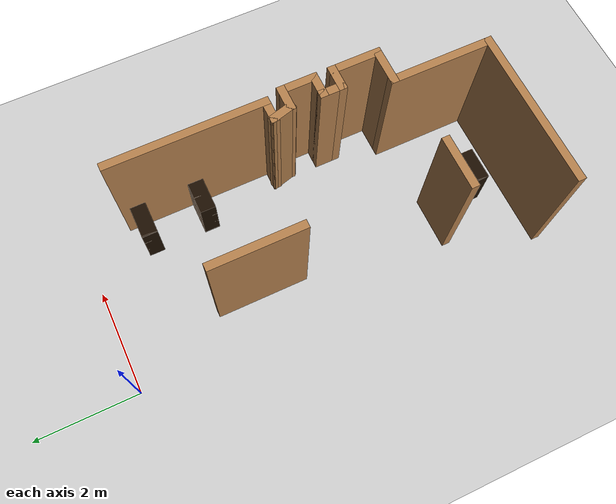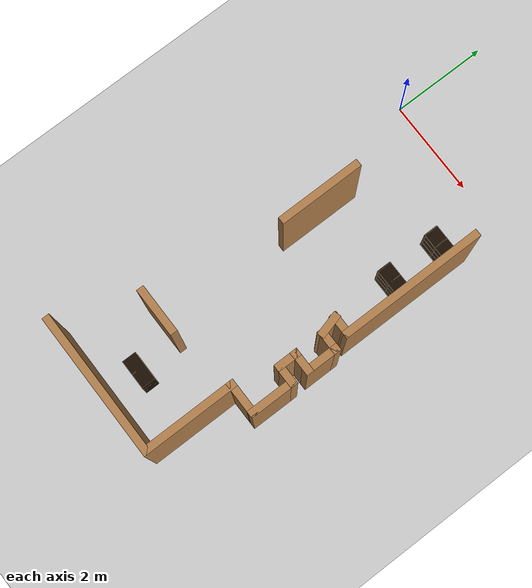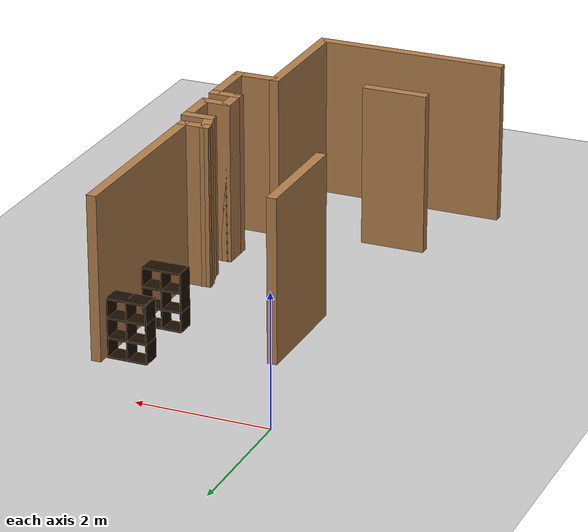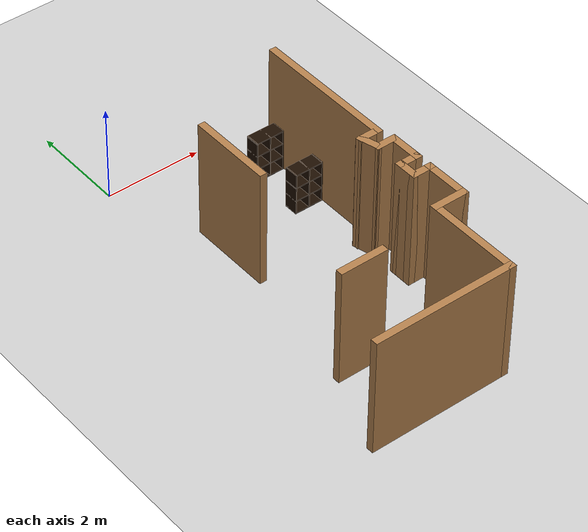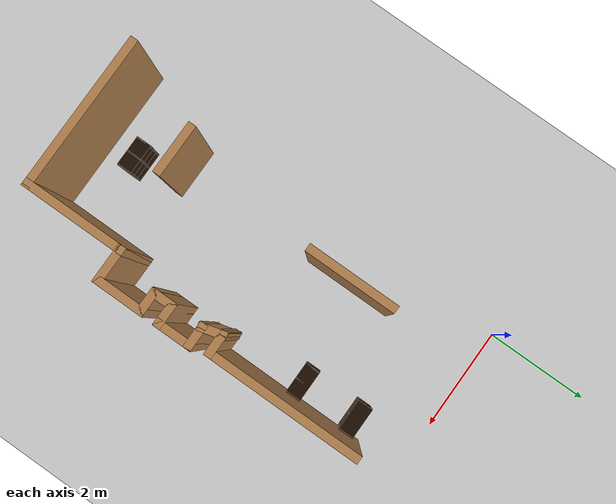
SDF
<sdf version="1.6">
 <world name="default">
  <model name="ground_plane">
   <static>1</static>
   <link name="link">
    <collision name="collision">
     <geometry><plane><normal>0 0 1</normal><size>100 100</size></plane></geometry>
     <surface><friction><ode><mu>100</mu><mu2>50</mu2></ode></friction></surface>
    </collision>
    <visual name="visual">
     <cast_shadows>0</cast_shadows>
     <geometry><plane><normal>0 0 1</normal><size>100 100</size></plane></geometry>
     <material>
      <script><uri>file://media/materials/scripts/gazebo.material</uri><name>Gazebo/Grey</name></script>
     </material>
    </visual>
   </link>
  </model>
  <model name="map_42">
   <link name="Wall_111">
    <pose>1.22826 -1.58492 0 0 0 -1.5708</pose>
    <visual name="Wall_111_Visual">
     <pose>0 0 1.25 0 -0 0</pose>
     <geometry><box><size>1.75 0.15 2.5</size></box></geometry>
     <material>
      <script><uri>file://media/materials/scripts/gazebo.material</uri><name>Gazebo/Wood</name></script>
      <ambient>1 1 1 1</ambient>
      <shader type="pixel"/>
     </material>
     <meta><layer>0</layer></meta>
    </visual>
    <collision name="Wall_111_Collision">
     <pose>0 0 1.25 0 -0 0</pose>
     <geometry><box><size>1.75 0.15 2.5</size></box></geometry>
     <surface>
      <friction>
       <ode><mu>1</mu><mu2>1</mu2><fdir1>0 0 0</fdir1><slip1>0</slip1><slip2>0</slip2></ode>
       <torsional>
        <coefficient>1</coefficient>
        <patch_radius>0</patch_radius>
        <surface_radius>0</surface_radius>
        <use_patch_radius>1</use_patch_radius>
        <ode><slip>0</slip></ode>
       </torsional>
      </friction>
      <bounce><restitution_coefficient>0</restitution_coefficient><threshold>1e+06</threshold></bounce>
      <contact>
       <collide_without_contact>0</collide_without_contact>
       <collide_without_contact_bitmask>1</collide_without_contact_bitmask>
       <collide_bitmask>1</collide_bitmask>
       <ode>
        <soft_cfm>0</soft_cfm>
        <soft_erp>0.2</soft_erp>
        <kp>1e+13</kp>
        <kd>1</kd>
        <max_vel>0.01</max_vel>
        <min_depth>0</min_depth>
       </ode>
       <bullet>
        <split_impulse>1</split_impulse>
        <split_impulse_penetration_threshold>-0.01</split_impulse_penetration_threshold>
        <soft_cfm>0</soft_cfm>
        <soft_erp>0.2</soft_erp>
        <kp>1e+13</kp>
        <kd>1</kd>
       </bullet>
      </contact>
     </surface>
    </collision>
   </link>
   <link name="Wall_59">
    <pose>1.175 -5.14031 0 0 -0 0</pose>
    <visual name="Wall_59_Visual">
     <pose>0 0 1.25 0 -0 0</pose>
     <geometry><box><size>1 0.15 2.5</size></box></geometry>
     <material>
      <script><uri>file://media/materials/scripts/gazebo.material</uri><name>Gazebo/Wood</name></script>
      <ambient>1 1 1 1</ambient>
      <shader type="pixel"/>
     </material>
     <meta><layer>0</layer></meta>
    </visual>
    <collision name="Wall_59_Collision">
     <pose>0 0 1.25 0 -0 0</pose>
     <geometry><box><size>1 0.15 2.5</size></box></geometry>
     <surface>
      <friction>
       <ode><mu>1</mu><mu2>1</mu2><fdir1>0 0 0</fdir1><slip1>0</slip1><slip2>0</slip2></ode>
       <torsional>
        <coefficient>1</coefficient>
        <patch_radius>0</patch_radius>
        <surface_radius>0</surface_radius>
        <use_patch_radius>1</use_patch_radius>
        <ode><slip>0</slip></ode>
       </torsional>
      </friction>
      <bounce><restitution_coefficient>0</restitution_coefficient><threshold>1e+06</threshold></bounce>
      <contact>
       <collide_without_contact>0</collide_without_contact>
       <collide_without_contact_bitmask>1</collide_without_contact_bitmask>
       <collide_bitmask>1</collide_bitmask>
       <ode>
        <soft_cfm>0</soft_cfm>
        <soft_erp>0.2</soft_erp>
        <kp>1e+13</kp>
        <kd>1</kd>
        <max_vel>0.01</max_vel>
        <min_depth>0</min_depth>
       </ode>
       <bullet>
        <split_impulse>1</split_impulse>
        <split_impulse_penetration_threshold>-0.01</split_impulse_penetration_threshold>
        <soft_cfm>0</soft_cfm>
        <soft_erp>0.2</soft_erp>
        <kp>1e+13</kp>
        <kd>1</kd>
       </bullet>
      </contact>
     </surface>
    </collision>
   </link>
   <link name="Wall_65">
    <pose>1.575 -6.74031 0 0 -0 0</pose>
    <visual name="Wall_65_Visual">
     <pose>0 0 1.25 0 -0 0</pose>
     <geometry><box><size>3 0.15 2.5</size></box></geometry>
     <material>
      <script><uri>file://media/materials/scripts/gazebo.material</uri><name>Gazebo/Wood</name></script>
      <ambient>1 1 1 1</ambient>
      <shader type="pixel"/>
     </material>
     <meta><layer>0</layer></meta>
    </visual>
    <collision name="Wall_65_Collision">
     <pose>0 0 1.25 0 -0 0</pose>
     <geometry><box><size>3 0.15 2.5</size></box></geometry>
     <surface>
      <friction>
       <ode><mu>1</mu><mu2>1</mu2><fdir1>0 0 0</fdir1><slip1>0</slip1><slip2>0</slip2></ode>
       <torsional>
        <coefficient>1</coefficient>
        <patch_radius>0</patch_radius>
        <surface_radius>0</surface_radius>
        <use_patch_radius>1</use_patch_radius>
        <ode><slip>0</slip></ode>
       </torsional>
      </friction>
      <bounce><restitution_coefficient>0</restitution_coefficient><threshold>1e+06</threshold></bounce>
      <contact>
       <collide_without_contact>0</collide_without_contact>
       <collide_without_contact_bitmask>1</collide_without_contact_bitmask>
       <collide_bitmask>1</collide_bitmask>
       <ode>
        <soft_cfm>0</soft_cfm>
        <soft_erp>0.2</soft_erp>
        <kp>1e+13</kp>
        <kd>1</kd>
        <max_vel>0.01</max_vel>
        <min_depth>0</min_depth>
       </ode>
       <bullet>
        <split_impulse>1</split_impulse>
        <split_impulse_penetration_threshold>-0.01</split_impulse_penetration_threshold>
        <soft_cfm>0</soft_cfm>
        <soft_erp>0.2</soft_erp>
        <kp>1e+13</kp>
        <kd>1</kd>
       </bullet>
      </contact>
     </surface>
    </collision>
   </link>
   <link name="Wall_66">
    <pose>3 -5.81531 0 0 -0 1.5708</pose>
    <visual name="Wall_66_Visual">
     <pose>0 0 1.25 0 -0 0</pose>
     <geometry><box><size>2 0.15 2.5</size></box></geometry>
     <material>
      <script><uri>file://media/materials/scripts/gazebo.material</uri><name>Gazebo/Wood</name></script>
      <ambient>1 1 1 1</ambient>
      <shader type="pixel"/>
     </material>
     <meta><layer>0</layer></meta>
    </visual>
    <collision name="Wall_66_Collision">
     <pose>0 0 1.25 0 -0 0</pose>
     <geometry><box><size>2 0.15 2.5</size></box></geometry>
     <surface>
      <friction>
       <ode><mu>1</mu><mu2>1</mu2><fdir1>0 0 0</fdir1><slip1>0</slip1><slip2>0</slip2></ode>
       <torsional>
        <coefficient>1</coefficient>
        <patch_radius>0</patch_radius>
        <surface_radius>0</surface_radius>
        <use_patch_radius>1</use_patch_radius>
        <ode><slip>0</slip></ode>
       </torsional>
      </friction>
      <bounce><restitution_coefficient>0</restitution_coefficient><threshold>1e+06</threshold></bounce>
      <contact>
       <collide_without_contact>0</collide_without_contact>
       <collide_without_contact_bitmask>1</collide_without_contact_bitmask>
       <collide_bitmask>1</collide_bitmask>
       <ode>
        <soft_cfm>0</soft_cfm>
        <soft_erp>0.2</soft_erp>
        <kp>1e+13</kp>
        <kd>1</kd>
        <max_vel>0.01</max_vel>
        <min_depth>0</min_depth>
       </ode>
       <bullet>
        <split_impulse>1</split_impulse>
        <split_impulse_penetration_threshold>-0.01</split_impulse_penetration_threshold>
        <soft_cfm>0</soft_cfm>
        <soft_erp>0.2</soft_erp>
        <kp>1e+13</kp>
        <kd>1</kd>
       </bullet>
      </contact>
     </surface>
    </collision>
   </link>
   <link name="Wall_69">
    <pose>3.3 -4.89031 0 0 -0 0</pose>
    <visual name="Wall_69_Visual">
     <pose>0 0 1.25 0 -0 0</pose>
     <geometry><box><size>0.75 0.15 2.5</size></box></geometry>
     <material>
      <script><uri>file://media/materials/scripts/gazebo.material</uri><name>Gazebo/Wood</name></script>
      <ambient>1 1 1 1</ambient>
      <shader type="pixel"/>
     </material>
     <meta><layer>0</layer></meta>
    </visual>
    <collision name="Wall_69_Collision">
     <pose>0 0 1.25 0 -0 0</pose>
     <geometry><box><size>0.75 0.15 2.5</size></box></geometry>
     <surface>
      <friction>
       <ode><mu>1</mu><mu2>1</mu2><fdir1>0 0 0</fdir1><slip1>0</slip1><slip2>0</slip2></ode>
       <torsional>
        <coefficient>1</coefficient>
        <patch_radius>0</patch_radius>
        <surface_radius>0</surface_radius>
        <use_patch_radius>1</use_patch_radius>
        <ode><slip>0</slip></ode>
       </torsional>
      </friction>
      <bounce><restitution_coefficient>0</restitution_coefficient><threshold>1e+06</threshold></bounce>
      <contact>
       <collide_without_contact>0</collide_without_contact>
       <collide_without_contact_bitmask>1</collide_without_contact_bitmask>
       <collide_bitmask>1</collide_bitmask>
       <ode>
        <soft_cfm>0</soft_cfm>
        <soft_erp>0.2</soft_erp>
        <kp>1e+13</kp>
        <kd>1</kd>
        <max_vel>0.01</max_vel>
        <min_depth>0</min_depth>
       </ode>
       <bullet>
        <split_impulse>1</split_impulse>
        <split_impulse_penetration_threshold>-0.01</split_impulse_penetration_threshold>
        <soft_cfm>0</soft_cfm>
        <soft_erp>0.2</soft_erp>
        <kp>1e+13</kp>
        <kd>1</kd>
       </bullet>
      </contact>
     </surface>
    </collision>
   </link>
   <link name="Wall_70">
    <pose>3.6 -4.46531 0 0 -0 1.5708</pose>
    <visual name="Wall_70_Visual">
     <pose>0 0 1.25 0 -0 0</pose>
     <geometry><box><size>1 0.15 2.5</size></box></geometry>
     <material>
      <script><uri>file://media/materials/scripts/gazebo.material</uri><name>Gazebo/Wood</name></script>
      <ambient>1 1 1 1</ambient>
      <shader type="pixel"/>
     </material>
     <meta><layer>0</layer></meta>
    </visual>
    <collision name="Wall_70_Collision">
     <pose>0 0 1.25 0 -0 0</pose>
     <geometry><box><size>1 0.15 2.5</size></box></geometry>
     <surface>
      <friction>
       <ode><mu>1</mu><mu2>1</mu2><fdir1>0 0 0</fdir1><slip1>0</slip1><slip2>0</slip2></ode>
       <torsional>
        <coefficient>1</coefficient>
        <patch_radius>0</patch_radius>
        <surface_radius>0</surface_radius>
        <use_patch_radius>1</use_patch_radius>
        <ode><slip>0</slip></ode>
       </torsional>
      </friction>
      <bounce><restitution_coefficient>0</restitution_coefficient><threshold>1e+06</threshold></bounce>
      <contact>
       <collide_without_contact>0</collide_without_contact>
       <collide_without_contact_bitmask>1</collide_without_contact_bitmask>
       <collide_bitmask>1</collide_bitmask>
       <ode>
        <soft_cfm>0</soft_cfm>
        <soft_erp>0.2</soft_erp>
        <kp>1e+13</kp>
        <kd>1</kd>
        <max_vel>0.01</max_vel>
        <min_depth>0</min_depth>
       </ode>
       <bullet>
        <split_impulse>1</split_impulse>
        <split_impulse_penetration_threshold>-0.01</split_impulse_penetration_threshold>
        <soft_cfm>0</soft_cfm>
        <soft_erp>0.2</soft_erp>
        <kp>1e+13</kp>
        <kd>1</kd>
       </bullet>
      </contact>
     </surface>
    </collision>
   </link>
   <link name="Wall_71">
    <pose>3.425 -4.04031 0 0 -0 3.14159</pose>
    <visual name="Wall_71_Visual">
     <pose>0 0 1.25 0 -0 0</pose>
     <geometry><box><size>0.5 0.15 2.5</size></box></geometry>
     <material>
      <script><uri>file://media/materials/scripts/gazebo.material</uri><name>Gazebo/Wood</name></script>
      <ambient>1 1 1 1</ambient>
      <shader type="pixel"/>
     </material>
     <meta><layer>0</layer></meta>
    </visual>
    <collision name="Wall_71_Collision">
     <pose>0 0 1.25 0 -0 0</pose>
     <geometry><box><size>0.5 0.15 2.5</size></box></geometry>
     <surface>
      <friction>
       <ode><mu>1</mu><mu2>1</mu2><fdir1>0 0 0</fdir1><slip1>0</slip1><slip2>0</slip2></ode>
       <torsional>
        <coefficient>1</coefficient>
        <patch_radius>0</patch_radius>
        <surface_radius>0</surface_radius>
        <use_patch_radius>1</use_patch_radius>
        <ode><slip>0</slip></ode>
       </torsional>
      </friction>
      <bounce><restitution_coefficient>0</restitution_coefficient><threshold>1e+06</threshold></bounce>
      <contact>
       <collide_without_contact>0</collide_without_contact>
       <collide_without_contact_bitmask>1</collide_without_contact_bitmask>
       <collide_bitmask>1</collide_bitmask>
       <ode>
        <soft_cfm>0</soft_cfm>
        <soft_erp>0.2</soft_erp>
        <kp>1e+13</kp>
        <kd>1</kd>
        <max_vel>0.01</max_vel>
        <min_depth>0</min_depth>
       </ode>
       <bullet>
        <split_impulse>1</split_impulse>
        <split_impulse_penetration_threshold>-0.01</split_impulse_penetration_threshold>
        <soft_cfm>0</soft_cfm>
        <soft_erp>0.2</soft_erp>
        <kp>1e+13</kp>
        <kd>1</kd>
       </bullet>
      </contact>
     </surface>
    </collision>
   </link>
   <link name="Wall_72">
    <pose>3.25 -3.86531 0 0 -0 1.5708</pose>
    <visual name="Wall_72_Visual">
     <pose>0 0 1.25 0 -0 0</pose>
     <geometry><box><size>0.5 0.15 2.5</size></box></geometry>
     <material>
      <script><uri>file://media/materials/scripts/gazebo.material</uri><name>Gazebo/Wood</name></script>
      <ambient>1 1 1 1</ambient>
      <shader type="pixel"/>
     </material>
     <meta><layer>0</layer></meta>
    </visual>
    <collision name="Wall_72_Collision">
     <pose>0 0 1.25 0 -0 0</pose>
     <geometry><box><size>0.5 0.15 2.5</size></box></geometry>
     <surface>
      <friction>
       <ode><mu>1</mu><mu2>1</mu2><fdir1>0 0 0</fdir1><slip1>0</slip1><slip2>0</slip2></ode>
       <torsional>
        <coefficient>1</coefficient>
        <patch_radius>0</patch_radius>
        <surface_radius>0</surface_radius>
        <use_patch_radius>1</use_patch_radius>
        <ode><slip>0</slip></ode>
       </torsional>
      </friction>
      <bounce><restitution_coefficient>0</restitution_coefficient><threshold>1e+06</threshold></bounce>
      <contact>
       <collide_without_contact>0</collide_without_contact>
       <collide_without_contact_bitmask>1</collide_without_contact_bitmask>
       <collide_bitmask>1</collide_bitmask>
       <ode>
        <soft_cfm>0</soft_cfm>
        <soft_erp>0.2</soft_erp>
        <kp>1e+13</kp>
        <kd>1</kd>
        <max_vel>0.01</max_vel>
        <min_depth>0</min_depth>
       </ode>
       <bullet>
        <split_impulse>1</split_impulse>
        <split_impulse_penetration_threshold>-0.01</split_impulse_penetration_threshold>
        <soft_cfm>0</soft_cfm>
        <soft_erp>0.2</soft_erp>
        <kp>1e+13</kp>
        <kd>1</kd>
       </bullet>
      </contact>
     </surface>
    </collision>
   </link>
   <link name="Wall_73">
    <pose>3.425 -3.69031 0 0 -0 0</pose>
    <visual name="Wall_73_Visual">
     <pose>0 0 1.25 0 -0 0</pose>
     <geometry><box><size>0.5 0.15 2.5</size></box></geometry>
     <material>
      <script><uri>file://media/materials/scripts/gazebo.material</uri><name>Gazebo/Wood</name></script>
      <ambient>1 1 1 1</ambient>
      <shader type="pixel"/>
     </material>
     <meta><layer>0</layer></meta>
    </visual>
    <collision name="Wall_73_Collision">
     <pose>0 0 1.25 0 -0 0</pose>
     <geometry><box><size>0.5 0.15 2.5</size></box></geometry>
     <surface>
      <friction>
       <ode><mu>1</mu><mu2>1</mu2><fdir1>0 0 0</fdir1><slip1>0</slip1><slip2>0</slip2></ode>
       <torsional>
        <coefficient>1</coefficient>
        <patch_radius>0</patch_radius>
        <surface_radius>0</surface_radius>
        <use_patch_radius>1</use_patch_radius>
        <ode><slip>0</slip></ode>
       </torsional>
      </friction>
      <bounce><restitution_coefficient>0</restitution_coefficient><threshold>1e+06</threshold></bounce>
      <contact>
       <collide_without_contact>0</collide_without_contact>
       <collide_without_contact_bitmask>1</collide_without_contact_bitmask>
       <collide_bitmask>1</collide_bitmask>
       <ode>
        <soft_cfm>0</soft_cfm>
        <soft_erp>0.2</soft_erp>
        <kp>1e+13</kp>
        <kd>1</kd>
        <max_vel>0.01</max_vel>
        <min_depth>0</min_depth>
       </ode>
       <bullet>
        <split_impulse>1</split_impulse>
        <split_impulse_penetration_threshold>-0.01</split_impulse_penetration_threshold>
        <soft_cfm>0</soft_cfm>
        <soft_erp>0.2</soft_erp>
        <kp>1e+13</kp>
        <kd>1</kd>
       </bullet>
      </contact>
     </surface>
    </collision>
   </link>
   <link name="Wall_74">
    <pose>3.6 -3.39031 0 0 -0 1.5708</pose>
    <visual name="Wall_74_Visual">
     <pose>0 0 1.25 0 -0 0</pose>
     <geometry><box><size>0.75 0.15 2.5</size></box></geometry>
     <material>
      <script><uri>file://media/materials/scripts/gazebo.material</uri><name>Gazebo/Wood</name></script>
      <ambient>1 1 1 1</ambient>
      <shader type="pixel"/>
     </material>
     <meta><layer>0</layer></meta>
    </visual>
    <collision name="Wall_74_Collision">
     <pose>0 0 1.25 0 -0 0</pose>
     <geometry><box><size>0.75 0.15 2.5</size></box></geometry>
     <surface>
      <friction>
       <ode><mu>1</mu><mu2>1</mu2><fdir1>0 0 0</fdir1><slip1>0</slip1><slip2>0</slip2></ode>
       <torsional>
        <coefficient>1</coefficient>
        <patch_radius>0</patch_radius>
        <surface_radius>0</surface_radius>
        <use_patch_radius>1</use_patch_radius>
        <ode><slip>0</slip></ode>
       </torsional>
      </friction>
      <bounce><restitution_coefficient>0</restitution_coefficient><threshold>1e+06</threshold></bounce>
      <contact>
       <collide_without_contact>0</collide_without_contact>
       <collide_without_contact_bitmask>1</collide_without_contact_bitmask>
       <collide_bitmask>1</collide_bitmask>
       <ode>
        <soft_cfm>0</soft_cfm>
        <soft_erp>0.2</soft_erp>
        <kp>1e+13</kp>
        <kd>1</kd>
        <max_vel>0.01</max_vel>
        <min_depth>0</min_depth>
       </ode>
       <bullet>
        <split_impulse>1</split_impulse>
        <split_impulse_penetration_threshold>-0.01</split_impulse_penetration_threshold>
        <soft_cfm>0</soft_cfm>
        <soft_erp>0.2</soft_erp>
        <kp>1e+13</kp>
        <kd>1</kd>
       </bullet>
      </contact>
     </surface>
    </collision>
   </link>
   <link name="Wall_75">
    <pose>3.425 -3.09031 0 0 -0 3.14159</pose>
    <visual name="Wall_75_Visual">
     <pose>0 0 1.25 0 -0 0</pose>
     <geometry><box><size>0.5 0.15 2.5</size></box></geometry>
     <material>
      <script><uri>file://media/materials/scripts/gazebo.material</uri><name>Gazebo/Wood</name></script>
      <ambient>1 1 1 1</ambient>
      <shader type="pixel"/>
     </material>
     <meta><layer>0</layer></meta>
    </visual>
    <collision name="Wall_75_Collision">
     <pose>0 0 1.25 0 -0 0</pose>
     <geometry><box><size>0.5 0.15 2.5</size></box></geometry>
     <surface>
      <friction>
       <ode><mu>1</mu><mu2>1</mu2><fdir1>0 0 0</fdir1><slip1>0</slip1><slip2>0</slip2></ode>
       <torsional>
        <coefficient>1</coefficient>
        <patch_radius>0</patch_radius>
        <surface_radius>0</surface_radius>
        <use_patch_radius>1</use_patch_radius>
        <ode><slip>0</slip></ode>
       </torsional>
      </friction>
      <bounce><restitution_coefficient>0</restitution_coefficient><threshold>1e+06</threshold></bounce>
      <contact>
       <collide_without_contact>0</collide_without_contact>
       <collide_without_contact_bitmask>1</collide_without_contact_bitmask>
       <collide_bitmask>1</collide_bitmask>
       <ode>
        <soft_cfm>0</soft_cfm>
        <soft_erp>0.2</soft_erp>
        <kp>1e+13</kp>
        <kd>1</kd>
        <max_vel>0.01</max_vel>
        <min_depth>0</min_depth>
       </ode>
       <bullet>
        <split_impulse>1</split_impulse>
        <split_impulse_penetration_threshold>-0.01</split_impulse_penetration_threshold>
        <soft_cfm>0</soft_cfm>
        <soft_erp>0.2</soft_erp>
        <kp>1e+13</kp>
        <kd>1</kd>
       </bullet>
      </contact>
     </surface>
    </collision>
   </link>
   <link name="Wall_76">
    <pose>3.20471 -2.92128 0 0 -0 1.8326</pose>
    <visual name="Wall_76_Visual">
     <pose>0 0 1.25 0 -0 0</pose>
     <geometry><box><size>0.5 0.15 2.5</size></box></geometry>
     <material>
      <script><uri>file://media/materials/scripts/gazebo.material</uri><name>Gazebo/Wood</name></script>
      <ambient>1 1 1 1</ambient>
      <shader type="pixel"/>
     </material>
     <meta><layer>0</layer></meta>
    </visual>
    <collision name="Wall_76_Collision">
     <pose>0 0 1.25 0 -0 0</pose>
     <geometry><box><size>0.5 0.15 2.5</size></box></geometry>
     <surface>
      <friction>
       <ode><mu>1</mu><mu2>1</mu2><fdir1>0 0 0</fdir1><slip1>0</slip1><slip2>0</slip2></ode>
       <torsional>
        <coefficient>1</coefficient>
        <patch_radius>0</patch_radius>
        <surface_radius>0</surface_radius>
        <use_patch_radius>1</use_patch_radius>
        <ode><slip>0</slip></ode>
       </torsional>
      </friction>
      <bounce><restitution_coefficient>0</restitution_coefficient><threshold>1e+06</threshold></bounce>
      <contact>
       <collide_without_contact>0</collide_without_contact>
       <collide_without_contact_bitmask>1</collide_without_contact_bitmask>
       <collide_bitmask>1</collide_bitmask>
       <ode>
        <soft_cfm>0</soft_cfm>
        <soft_erp>0.2</soft_erp>
        <kp>1e+13</kp>
        <kd>1</kd>
        <max_vel>0.01</max_vel>
        <min_depth>0</min_depth>
       </ode>
       <bullet>
        <split_impulse>1</split_impulse>
        <split_impulse_penetration_threshold>-0.01</split_impulse_penetration_threshold>
        <soft_cfm>0</soft_cfm>
        <soft_erp>0.2</soft_erp>
        <kp>1e+13</kp>
        <kd>1</kd>
       </bullet>
      </contact>
     </surface>
    </collision>
   </link>
   <link name="Wall_77">
    <pose>3.33441 -2.75224 0 0 -0 0</pose>
    <visual name="Wall_77_Visual">
     <pose>0 0 1.25 0 -0 0</pose>
     <geometry><box><size>0.5 0.15 2.5</size></box></geometry>
     <material>
      <script><uri>file://media/materials/scripts/gazebo.material</uri><name>Gazebo/Wood</name></script>
      <ambient>1 1 1 1</ambient>
      <shader type="pixel"/>
     </material>
     <meta><layer>0</layer></meta>
    </visual>
    <collision name="Wall_77_Collision">
     <pose>0 0 1.25 0 -0 0</pose>
     <geometry><box><size>0.5 0.15 2.5</size></box></geometry>
     <surface>
      <friction>
       <ode><mu>1</mu><mu2>1</mu2><fdir1>0 0 0</fdir1><slip1>0</slip1><slip2>0</slip2></ode>
       <torsional>
        <coefficient>1</coefficient>
        <patch_radius>0</patch_radius>
        <surface_radius>0</surface_radius>
        <use_patch_radius>1</use_patch_radius>
        <ode><slip>0</slip></ode>
       </torsional>
      </friction>
      <bounce><restitution_coefficient>0</restitution_coefficient><threshold>1e+06</threshold></bounce>
      <contact>
       <collide_without_contact>0</collide_without_contact>
       <collide_without_contact_bitmask>1</collide_without_contact_bitmask>
       <collide_bitmask>1</collide_bitmask>
       <ode>
        <soft_cfm>0</soft_cfm>
        <soft_erp>0.2</soft_erp>
        <kp>1e+13</kp>
        <kd>1</kd>
        <max_vel>0.01</max_vel>
        <min_depth>0</min_depth>
       </ode>
       <bullet>
        <split_impulse>1</split_impulse>
        <split_impulse_penetration_threshold>-0.01</split_impulse_penetration_threshold>
        <soft_cfm>0</soft_cfm>
        <soft_erp>0.2</soft_erp>
        <kp>1e+13</kp>
        <kd>1</kd>
       </bullet>
      </contact>
     </surface>
    </collision>
   </link>
   <link name="Wall_78">
    <pose>3.50941 -1.32724 0 0 -0 1.5708</pose>
    <visual name="Wall_78_Visual">
     <pose>0 0 1.25 0 -0 0</pose>
     <geometry><box><size>3 0.15 2.5</size></box></geometry>
     <material>
      <script><uri>file://media/materials/scripts/gazebo.material</uri><name>Gazebo/Wood</name></script>
      <ambient>1 1 1 1</ambient>
      <shader type="pixel"/>
     </material>
     <meta><layer>0</layer></meta>
    </visual>
    <collision name="Wall_78_Collision">
     <pose>0 0 1.25 0 -0 0</pose>
     <geometry><box><size>3 0.15 2.5</size></box></geometry>
     <surface>
      <friction>
       <ode><mu>1</mu><mu2>1</mu2><fdir1>0 0 0</fdir1><slip1>0</slip1><slip2>0</slip2></ode>
       <torsional>
        <coefficient>1</coefficient>
        <patch_radius>0</patch_radius>
        <surface_radius>0</surface_radius>
        <use_patch_radius>1</use_patch_radius>
        <ode><slip>0</slip></ode>
       </torsional>
      </friction>
      <bounce><restitution_coefficient>0</restitution_coefficient><threshold>1e+06</threshold></bounce>
      <contact>
       <collide_without_contact>0</collide_without_contact>
       <collide_without_contact_bitmask>1</collide_without_contact_bitmask>
       <collide_bitmask>1</collide_bitmask>
       <ode>
        <soft_cfm>0</soft_cfm>
        <soft_erp>0.2</soft_erp>
        <kp>1e+13</kp>
        <kd>1</kd>
        <max_vel>0.01</max_vel>
        <min_depth>0</min_depth>
       </ode>
       <bullet>
        <split_impulse>1</split_impulse>
        <split_impulse_penetration_threshold>-0.01</split_impulse_penetration_threshold>
        <soft_cfm>0</soft_cfm>
        <soft_erp>0.2</soft_erp>
        <kp>1e+13</kp>
        <kd>1</kd>
       </bullet>
      </contact>
     </surface>
    </collision>
   </link>
   <static>1</static>
   <pose>-0.44967 -1.08542 0 0 -0 0</pose>
  </model>
  <model name="6_Cube_StorageE">
   <link name="Wall_0">
    <pose>0 0 0.01 0 -0 0</pose>
    <inertial>
     <mass>1.6201</mass>
     <inertia><ixx>0.0119</ixx><iyy>0.0631</iyy><izz>0.0513</izz><ixy>0</ixy><ixz>0</ixz><iyz>0</iyz></inertia>
    </inertial>
    <collision name="Wall_0_Collision"><geometry><box><size>0.616 0.296 0.02</size></box></geometry></collision>
    <visual name="Wall_0_Visual">
     <geometry><box><size>0.616 0.296 0.02</size></box></geometry>
     <material>
      <script><uri>file://media/materials/scripts/gazebo.material</uri><name>Gazebo/Grey</name></script>
      <ambient>0.105882 0.0509804 0 1</ambient>
     </material>
    </visual>
   </link>
   <joint name="0_2" type="fixed">
    <pose>-0.308 0 0 0 -0 0</pose>
    <parent>Wall_2</parent>
    <child>Wall_0</child>
    <axis>
     <xyz>1 0 0</xyz>
     <use_parent_model_frame>0</use_parent_model_frame>
     <limit><lower>-1e+16</lower><upper>1e+16</upper></limit>
    </axis>
   </joint>
   <joint name="0_12" type="fixed">
    <parent>Wall_12</parent>
    <child>Wall_0</child>
    <axis>
     <xyz>0 0 1</xyz>
     <use_parent_model_frame>0</use_parent_model_frame>
     <limit><lower>-1e+16</lower><upper>1e+16</upper></limit>
    </axis>
   </joint>
   <joint name="0_4" type="fixed">
    <pose>0.308 0 0 0 -0 0</pose>
    <parent>Wall_4</parent>
    <child>Wall_0</child>
    <axis>
     <xyz>1 0 0</xyz>
     <use_parent_model_frame>0</use_parent_model_frame>
     <limit><lower>-1e+16</lower><upper>1e+16</upper></limit>
    </axis>
   </joint>
   <link name="Wall_10">
    <pose>0 0 0.61 0 -0 0</pose>
    <inertial>
     <mass>1.6201</mass>
     <inertia><ixx>0.0119</ixx><iyy>0.0631</iyy><izz>0.0513</izz><ixy>0</ixy><ixz>0</ixz><iyz>0</iyz></inertia>
    </inertial>
    <collision name="Wall_10_Collision"><geometry><box><size>0.616 0.296 0.02</size></box></geometry></collision>
    <visual name="Wall_10_Visual">
     <geometry><box><size>0.616 0.296 0.02</size></box></geometry>
     <material>
      <script><uri>file://media/materials/scripts/gazebo.material</uri><name>Gazebo/Grey</name></script>
      <ambient>0.105882 0.0509804 0 1</ambient>
     </material>
    </visual>
   </link>
   <joint name="10_2" type="fixed">
    <pose>-0.308 0 0 0 -0 0</pose>
    <parent>Wall_2</parent>
    <child>Wall_10</child>
    <axis>
     <xyz>1 0 0</xyz>
     <use_parent_model_frame>0</use_parent_model_frame>
     <limit><lower>-1e+16</lower><upper>1e+16</upper></limit>
    </axis>
   </joint>
   <joint name="10_12" type="fixed">
    <parent>Wall_12</parent>
    <child>Wall_10</child>
    <axis>
     <xyz>0 0 1</xyz>
     <use_parent_model_frame>0</use_parent_model_frame>
     <limit><lower>-1e+16</lower><upper>1e+16</upper></limit>
    </axis>
   </joint>
   <joint name="10_4" type="fixed">
    <pose>0.308 0 0 0 -0 0</pose>
    <parent>Wall_4</parent>
    <child>Wall_10</child>
    <axis>
     <xyz>1 0 0</xyz>
     <use_parent_model_frame>0</use_parent_model_frame>
     <limit><lower>-1e+16</lower><upper>1e+16</upper></limit>
    </axis>
   </joint>
   <link name="Wall_12">
    <pose>0 0 0.4575 0 -0 0</pose>
    <inertial>
     <mass>2.4065</mass>
     <inertia><ixx>0.0177</ixx><iyy>0.1855</iyy><izz>0.168</izz><ixy>0</ixy><ixz>0</ixz><iyz>0</iyz></inertia>
    </inertial>
    <collision name="Wall_12_Collision"><geometry><box><size>0.02 0.296 0.915</size></box></geometry></collision>
    <visual name="Wall_12_Visual">
     <geometry><box><size>0.02 0.296 0.915</size></box></geometry>
     <material>
      <script><uri>file://media/materials/scripts/gazebo.material</uri><name>Gazebo/Grey</name></script>
      <ambient>0.105882 0.0509804 0 1</ambient>
     </material>
    </visual>
   </link>
   <link name="Wall_2">
    <pose>-0.298 0 0.4575 0 -0 0</pose>
    <inertial>
     <mass>2.4065</mass>
     <inertia><ixx>0.0177</ixx><iyy>0.1855</iyy><izz>0.168</izz><ixy>0</ixy><ixz>0</ixz><iyz>0</iyz></inertia>
    </inertial>
    <collision name="Wall_2_Collision"><geometry><box><size>0.02 0.296 0.915</size></box></geometry></collision>
    <visual name="Wall_2_Visual">
     <geometry><box><size>0.02 0.296 0.915</size></box></geometry>
     <material>
      <script><uri>file://media/materials/scripts/gazebo.material</uri><name>Gazebo/Grey</name></script>
      <ambient>0.105882 0.0509804 0 1</ambient>
     </material>
    </visual>
   </link>
   <link name="Wall_4">
    <pose>0.298 0 0.4575 0 -0 0</pose>
    <inertial>
     <mass>2.4065</mass>
     <inertia><ixx>0.0177</ixx><iyy>0.1855</iyy><izz>0.168</izz><ixy>0</ixy><ixz>0</ixz><iyz>0</iyz></inertia>
    </inertial>
    <collision name="Wall_4_Collision"><geometry><box><size>0.02 0.296 0.915</size></box></geometry></collision>
    <visual name="Wall_4_Visual">
     <geometry><box><size>0.02 0.296 0.915</size></box></geometry>
     <material>
      <script><uri>file://media/materials/scripts/gazebo.material</uri><name>Gazebo/Grey</name></script>
      <ambient>0.105882 0.0509804 0 1</ambient>
     </material>
    </visual>
   </link>
   <link name="Wall_6">
    <pose>0 0 0.905 0 -0 0</pose>
    <inertial>
     <mass>1.6201</mass>
     <inertia><ixx>0.0119</ixx><iyy>0.0631</iyy><izz>0.0513</izz><ixy>0</ixy><ixz>0</ixz><iyz>0</iyz></inertia>
    </inertial>
    <collision name="Wall_6_Collision"><geometry><box><size>0.616 0.296 0.02</size></box></geometry></collision>
    <visual name="Wall_6_Visual">
     <geometry><box><size>0.616 0.296 0.02</size></box></geometry>
     <material>
      <script><uri>file://media/materials/scripts/gazebo.material</uri><name>Gazebo/Grey</name></script>
      <ambient>0.105882 0.0509804 0 1</ambient>
     </material>
    </visual>
   </link>
   <joint name="6_2" type="fixed">
    <pose>-0.308 0 0 0 -0 0</pose>
    <parent>Wall_2</parent>
    <child>Wall_6</child>
    <axis>
     <xyz>2 0 0</xyz>
     <use_parent_model_frame>0</use_parent_model_frame>
     <limit><lower>-1e+16</lower><upper>1e+16</upper></limit>
    </axis>
   </joint>
   <joint name="6_12" type="fixed">
    <parent>Wall_12</parent>
    <child>Wall_6</child>
    <axis>
     <xyz>0 0 1</xyz>
     <use_parent_model_frame>0</use_parent_model_frame>
     <limit><lower>-1e+16</lower><upper>1e+16</upper></limit>
    </axis>
   </joint>
   <joint name="6_4" type="fixed">
    <pose>0.308 0 0 0 -0 0</pose>
    <parent>Wall_4</parent>
    <child>Wall_6</child>
    <axis>
     <xyz>1 0 0</xyz>
     <use_parent_model_frame>0</use_parent_model_frame>
     <limit><lower>-1e+16</lower><upper>1e+16</upper></limit>
    </axis>
   </joint>
   <link name="Wall_8">
    <pose>0 0 0.305 0 -0 0</pose>
    <inertial>
     <mass>1.6201</mass>
     <inertia><ixx>0.0119</ixx><iyy>0.0631</iyy><izz>0.0513</izz><ixy>0</ixy><ixz>0</ixz><iyz>0</iyz></inertia>
    </inertial>
    <collision name="Wall_8_Collision"><geometry><box><size>0.616 0.296 0.02</size></box></geometry></collision>
    <visual name="Wall_8_Visual">
     <geometry><box><size>0.616 0.296 0.02</size></box></geometry>
     <material>
      <script><uri>file://media/materials/scripts/gazebo.material</uri><name>Gazebo/Grey</name></script>
      <ambient>0.105882 0.0509804 0 1</ambient>
     </material>
    </visual>
   </link>
   <joint name="8_2" type="fixed">
    <pose>-0.308 0 0 0 -0 0</pose>
    <parent>Wall_2</parent>
    <child>Wall_8</child>
    <axis>
     <xyz>1 0 0</xyz>
     <use_parent_model_frame>0</use_parent_model_frame>
     <limit><lower>-1e+16</lower><upper>1e+16</upper></limit>
    </axis>
   </joint>
   <joint name="8_12" type="fixed">
    <parent>Wall_12</parent>
    <child>Wall_8</child>
    <axis>
     <xyz>0 0 1</xyz>
     <use_parent_model_frame>0</use_parent_model_frame>
     <limit><lower>-1e+16</lower><upper>1e+16</upper></limit>
    </axis>
   </joint>
   <joint name="8_4" type="fixed">
    <pose>0.308 0 0 0 -0 0</pose>
    <parent>Wall_4</parent>
    <child>Wall_8</child>
    <axis>
     <xyz>1 0 0</xyz>
     <use_parent_model_frame>0</use_parent_model_frame>
     <limit><lower>-1e+16</lower><upper>1e+16</upper></limit>
    </axis>
   </joint>
   <static>1</static>
   <pose>2.66113 -1.22407 0 0 -0 0</pose>
  </model>
  <model name="6_Cube_StorageE_0">
   <link name="Wall_0">
    <pose>0 0 0.01 0 -0 0</pose>
    <inertial>
     <mass>1.6201</mass>
     <inertia><ixx>0.0119</ixx><iyy>0.0631</iyy><izz>0.0513</izz><ixy>0</ixy><ixz>0</ixz><iyz>0</iyz></inertia>
    </inertial>
    <collision name="Wall_0_Collision"><geometry><box><size>0.616 0.296 0.02</size></box></geometry></collision>
    <visual name="Wall_0_Visual">
     <geometry><box><size>0.616 0.296 0.02</size></box></geometry>
     <material>
      <script><uri>file://media/materials/scripts/gazebo.material</uri><name>Gazebo/Grey</name></script>
      <ambient>0.105882 0.0509804 0 1</ambient>
     </material>
    </visual>
   </link>
   <joint name="0_2" type="fixed">
    <pose>-0.308 0 0 0 -0 0</pose>
    <parent>Wall_2</parent>
    <child>Wall_0</child>
    <axis>
     <xyz>1 0 0</xyz>
     <use_parent_model_frame>0</use_parent_model_frame>
     <limit><lower>-1e+16</lower><upper>1e+16</upper></limit>
    </axis>
   </joint>
   <joint name="0_12" type="fixed">
    <parent>Wall_12</parent>
    <child>Wall_0</child>
    <axis>
     <xyz>0 0 1</xyz>
     <use_parent_model_frame>0</use_parent_model_frame>
     <limit><lower>-1e+16</lower><upper>1e+16</upper></limit>
    </axis>
   </joint>
   <joint name="0_4" type="fixed">
    <pose>0.308 0 0 0 -0 0</pose>
    <parent>Wall_4</parent>
    <child>Wall_0</child>
    <axis>
     <xyz>1 0 0</xyz>
     <use_parent_model_frame>0</use_parent_model_frame>
     <limit><lower>-1e+16</lower><upper>1e+16</upper></limit>
    </axis>
   </joint>
   <link name="Wall_10">
    <pose>0 0 0.61 0 -0 0</pose>
    <inertial>
     <mass>1.6201</mass>
     <inertia><ixx>0.0119</ixx><iyy>0.0631</iyy><izz>0.0513</izz><ixy>0</ixy><ixz>0</ixz><iyz>0</iyz></inertia>
    </inertial>
    <collision name="Wall_10_Collision"><geometry><box><size>0.616 0.296 0.02</size></box></geometry></collision>
    <visual name="Wall_10_Visual">
     <geometry><box><size>0.616 0.296 0.02</size></box></geometry>
     <material>
      <script><uri>file://media/materials/scripts/gazebo.material</uri><name>Gazebo/Grey</name></script>
      <ambient>0.105882 0.0509804 0 1</ambient>
     </material>
    </visual>
   </link>
   <joint name="10_2" type="fixed">
    <pose>-0.308 0 0 0 -0 0</pose>
    <parent>Wall_2</parent>
    <child>Wall_10</child>
    <axis>
     <xyz>1 0 0</xyz>
     <use_parent_model_frame>0</use_parent_model_frame>
     <limit><lower>-1e+16</lower><upper>1e+16</upper></limit>
    </axis>
   </joint>
   <joint name="10_12" type="fixed">
    <parent>Wall_12</parent>
    <child>Wall_10</child>
    <axis>
     <xyz>0 0 1</xyz>
     <use_parent_model_frame>0</use_parent_model_frame>
     <limit><lower>-1e+16</lower><upper>1e+16</upper></limit>
    </axis>
   </joint>
   <joint name="10_4" type="fixed">
    <pose>0.308 0 0 0 -0 0</pose>
    <parent>Wall_4</parent>
    <child>Wall_10</child>
    <axis>
     <xyz>1 0 0</xyz>
     <use_parent_model_frame>0</use_parent_model_frame>
     <limit><lower>-1e+16</lower><upper>1e+16</upper></limit>
    </axis>
   </joint>
   <link name="Wall_12">
    <pose>0 0 0.4575 0 -0 0</pose>
    <inertial>
     <mass>2.4065</mass>
     <inertia><ixx>0.0177</ixx><iyy>0.1855</iyy><izz>0.168</izz><ixy>0</ixy><ixz>0</ixz><iyz>0</iyz></inertia>
    </inertial>
    <collision name="Wall_12_Collision"><geometry><box><size>0.02 0.296 0.915</size></box></geometry></collision>
    <visual name="Wall_12_Visual">
     <geometry><box><size>0.02 0.296 0.915</size></box></geometry>
     <material>
      <script><uri>file://media/materials/scripts/gazebo.material</uri><name>Gazebo/Grey</name></script>
      <ambient>0.105882 0.0509804 0 1</ambient>
     </material>
    </visual>
   </link>
   <link name="Wall_2">
    <pose>-0.298 0 0.4575 0 -0 0</pose>
    <inertial>
     <mass>2.4065</mass>
     <inertia><ixx>0.0177</ixx><iyy>0.1855</iyy><izz>0.168</izz><ixy>0</ixy><ixz>0</ixz><iyz>0</iyz></inertia>
    </inertial>
    <collision name="Wall_2_Collision"><geometry><box><size>0.02 0.296 0.915</size></box></geometry></collision>
    <visual name="Wall_2_Visual">
     <geometry><box><size>0.02 0.296 0.915</size></box></geometry>
     <material>
      <script><uri>file://media/materials/scripts/gazebo.material</uri><name>Gazebo/Grey</name></script>
      <ambient>0.105882 0.0509804 0 1</ambient>
     </material>
    </visual>
   </link>
   <link name="Wall_4">
    <pose>0.298 0 0.4575 0 -0 0</pose>
    <inertial>
     <mass>2.4065</mass>
     <inertia><ixx>0.0177</ixx><iyy>0.1855</iyy><izz>0.168</izz><ixy>0</ixy><ixz>0</ixz><iyz>0</iyz></inertia>
    </inertial>
    <collision name="Wall_4_Collision"><geometry><box><size>0.02 0.296 0.915</size></box></geometry></collision>
    <visual name="Wall_4_Visual">
     <geometry><box><size>0.02 0.296 0.915</size></box></geometry>
     <material>
      <script><uri>file://media/materials/scripts/gazebo.material</uri><name>Gazebo/Grey</name></script>
      <ambient>0.105882 0.0509804 0 1</ambient>
     </material>
    </visual>
   </link>
   <link name="Wall_6">
    <pose>0 0 0.905 0 -0 0</pose>
    <inertial>
     <mass>1.6201</mass>
     <inertia><ixx>0.0119</ixx><iyy>0.0631</iyy><izz>0.0513</izz><ixy>0</ixy><ixz>0</ixz><iyz>0</iyz></inertia>
    </inertial>
    <collision name="Wall_6_Collision"><geometry><box><size>0.616 0.296 0.02</size></box></geometry></collision>
    <visual name="Wall_6_Visual">
     <geometry><box><size>0.616 0.296 0.02</size></box></geometry>
     <material>
      <script><uri>file://media/materials/scripts/gazebo.material</uri><name>Gazebo/Grey</name></script>
      <ambient>0.105882 0.0509804 0 1</ambient>
     </material>
    </visual>
   </link>
   <joint name="6_2" type="fixed">
    <pose>-0.308 0 0 0 -0 0</pose>
    <parent>Wall_2</parent>
    <child>Wall_6</child>
    <axis>
     <xyz>2 0 0</xyz>
     <use_parent_model_frame>0</use_parent_model_frame>
     <limit><lower>-1e+16</lower><upper>1e+16</upper></limit>
    </axis>
   </joint>
   <joint name="6_12" type="fixed">
    <parent>Wall_12</parent>
    <child>Wall_6</child>
    <axis>
     <xyz>0 0 1</xyz>
     <use_parent_model_frame>0</use_parent_model_frame>
     <limit><lower>-1e+16</lower><upper>1e+16</upper></limit>
    </axis>
   </joint>
   <joint name="6_4" type="fixed">
    <pose>0.308 0 0 0 -0 0</pose>
    <parent>Wall_4</parent>
    <child>Wall_6</child>
    <axis>
     <xyz>1 0 0</xyz>
     <use_parent_model_frame>0</use_parent_model_frame>
     <limit><lower>-1e+16</lower><upper>1e+16</upper></limit>
    </axis>
   </joint>
   <link name="Wall_8">
    <pose>0 0 0.305 0 -0 0</pose>
    <inertial>
     <mass>1.6201</mass>
     <inertia><ixx>0.0119</ixx><iyy>0.0631</iyy><izz>0.0513</izz><ixy>0</ixy><ixz>0</ixz><iyz>0</iyz></inertia>
    </inertial>
    <collision name="Wall_8_Collision"><geometry><box><size>0.616 0.296 0.02</size></box></geometry></collision>
    <visual name="Wall_8_Visual">
     <geometry><box><size>0.616 0.296 0.02</size></box></geometry>
     <material>
      <script><uri>file://media/materials/scripts/gazebo.material</uri><name>Gazebo/Grey</name></script>
      <ambient>0.105882 0.0509804 0 1</ambient>
     </material>
    </visual>
   </link>
   <joint name="8_2" type="fixed">
    <pose>-0.308 0 0 0 -0 0</pose>
    <parent>Wall_2</parent>
    <child>Wall_8</child>
    <axis>
     <xyz>1 0 0</xyz>
     <use_parent_model_frame>0</use_parent_model_frame>
     <limit><lower>-1e+16</lower><upper>1e+16</upper></limit>
    </axis>
   </joint>
   <joint name="8_12" type="fixed">
    <parent>Wall_12</parent>
    <child>Wall_8</child>
    <axis>
     <xyz>0 0 1</xyz>
     <use_parent_model_frame>0</use_parent_model_frame>
     <limit><lower>-1e+16</lower><upper>1e+16</upper></limit>
    </axis>
   </joint>
   <joint name="8_4" type="fixed">
    <pose>0.308 0 0 0 -0 0</pose>
    <parent>Wall_4</parent>
    <child>Wall_8</child>
    <axis>
     <xyz>1 0 0</xyz>
     <use_parent_model_frame>0</use_parent_model_frame>
     <limit><lower>-1e+16</lower><upper>1e+16</upper></limit>
    </axis>
   </joint>
   <static>1</static>
   <pose>2.66621 -2.34588 0 0 -0 0</pose>
  </model>
  <model name="6_Cube_StorageE_4">
   <link name="Wall_0">
    <pose>0 0 0.01 0 -0 0</pose>
    <inertial>
     <mass>1.6201</mass>
     <inertia><ixx>0.0119</ixx><iyy>0.0631</iyy><izz>0.0513</izz><ixy>0</ixy><ixz>0</ixz><iyz>0</iyz></inertia>
    </inertial>
    <collision name="Wall_0_Collision"><geometry><box><size>0.616 0.296 0.02</size></box></geometry></collision>
    <visual name="Wall_0_Visual">
     <geometry><box><size>0.616 0.296 0.02</size></box></geometry>
     <material>
      <script><uri>file://media/materials/scripts/gazebo.material</uri><name>Gazebo/Grey</name></script>
      <ambient>0.105882 0.0509804 0 1</ambient>
     </material>
    </visual>
   </link>
   <joint name="0_2" type="fixed">
    <pose>-0.308 0 0 0 -0 0</pose>
    <parent>Wall_2</parent>
    <child>Wall_0</child>
    <axis>
     <xyz>1 0 0</xyz>
     <use_parent_model_frame>0</use_parent_model_frame>
     <limit><lower>-1e+16</lower><upper>1e+16</upper></limit>
    </axis>
   </joint>
   <joint name="0_12" type="fixed">
    <parent>Wall_12</parent>
    <child>Wall_0</child>
    <axis>
     <xyz>0 0 1</xyz>
     <use_parent_model_frame>0</use_parent_model_frame>
     <limit><lower>-1e+16</lower><upper>1e+16</upper></limit>
    </axis>
   </joint>
   <joint name="0_4" type="fixed">
    <pose>0.308 0 0 0 -0 0</pose>
    <parent>Wall_4</parent>
    <child>Wall_0</child>
    <axis>
     <xyz>1 0 0</xyz>
     <use_parent_model_frame>0</use_parent_model_frame>
     <limit><lower>-1e+16</lower><upper>1e+16</upper></limit>
    </axis>
   </joint>
   <link name="Wall_10">
    <pose>0 0 0.61 0 -0 0</pose>
    <inertial>
     <mass>1.6201</mass>
     <inertia><ixx>0.0119</ixx><iyy>0.0631</iyy><izz>0.0513</izz><ixy>0</ixy><ixz>0</ixz><iyz>0</iyz></inertia>
    </inertial>
    <collision name="Wall_10_Collision"><geometry><box><size>0.616 0.296 0.02</size></box></geometry></collision>
    <visual name="Wall_10_Visual">
     <geometry><box><size>0.616 0.296 0.02</size></box></geometry>
     <material>
      <script><uri>file://media/materials/scripts/gazebo.material</uri><name>Gazebo/Grey</name></script>
      <ambient>0.105882 0.0509804 0 1</ambient>
     </material>
    </visual>
   </link>
   <joint name="10_2" type="fixed">
    <pose>-0.308 0 0 0 -0 0</pose>
    <parent>Wall_2</parent>
    <child>Wall_10</child>
    <axis>
     <xyz>1 0 0</xyz>
     <use_parent_model_frame>0</use_parent_model_frame>
     <limit><lower>-1e+16</lower><upper>1e+16</upper></limit>
    </axis>
   </joint>
   <joint name="10_12" type="fixed">
    <parent>Wall_12</parent>
    <child>Wall_10</child>
    <axis>
     <xyz>0 0 1</xyz>
     <use_parent_model_frame>0</use_parent_model_frame>
     <limit><lower>-1e+16</lower><upper>1e+16</upper></limit>
    </axis>
   </joint>
   <joint name="10_4" type="fixed">
    <pose>0.308 0 0 0 -0 0</pose>
    <parent>Wall_4</parent>
    <child>Wall_10</child>
    <axis>
     <xyz>1 0 0</xyz>
     <use_parent_model_frame>0</use_parent_model_frame>
     <limit><lower>-1e+16</lower><upper>1e+16</upper></limit>
    </axis>
   </joint>
   <link name="Wall_12">
    <pose>0 0 0.4575 0 -0 0</pose>
    <inertial>
     <mass>2.4065</mass>
     <inertia><ixx>0.0177</ixx><iyy>0.1855</iyy><izz>0.168</izz><ixy>0</ixy><ixz>0</ixz><iyz>0</iyz></inertia>
    </inertial>
    <collision name="Wall_12_Collision"><geometry><box><size>0.02 0.296 0.915</size></box></geometry></collision>
    <visual name="Wall_12_Visual">
     <geometry><box><size>0.02 0.296 0.915</size></box></geometry>
     <material>
      <script><uri>file://media/materials/scripts/gazebo.material</uri><name>Gazebo/Grey</name></script>
      <ambient>0.105882 0.0509804 0 1</ambient>
     </material>
    </visual>
   </link>
   <link name="Wall_2">
    <pose>-0.298 0 0.4575 0 -0 0</pose>
    <inertial>
     <mass>2.4065</mass>
     <inertia><ixx>0.0177</ixx><iyy>0.1855</iyy><izz>0.168</izz><ixy>0</ixy><ixz>0</ixz><iyz>0</iyz></inertia>
    </inertial>
    <collision name="Wall_2_Collision"><geometry><box><size>0.02 0.296 0.915</size></box></geometry></collision>
    <visual name="Wall_2_Visual">
     <geometry><box><size>0.02 0.296 0.915</size></box></geometry>
     <material>
      <script><uri>file://media/materials/scripts/gazebo.material</uri><name>Gazebo/Grey</name></script>
      <ambient>0.105882 0.0509804 0 1</ambient>
     </material>
    </visual>
   </link>
   <link name="Wall_4">
    <pose>0.298 0 0.4575 0 -0 0</pose>
    <inertial>
     <mass>2.4065</mass>
     <inertia><ixx>0.0177</ixx><iyy>0.1855</iyy><izz>0.168</izz><ixy>0</ixy><ixz>0</ixz><iyz>0</iyz></inertia>
    </inertial>
    <collision name="Wall_4_Collision"><geometry><box><size>0.02 0.296 0.915</size></box></geometry></collision>
    <visual name="Wall_4_Visual">
     <geometry><box><size>0.02 0.296 0.915</size></box></geometry>
     <material>
      <script><uri>file://media/materials/scripts/gazebo.material</uri><name>Gazebo/Grey</name></script>
      <ambient>0.105882 0.0509804 0 1</ambient>
     </material>
    </visual>
   </link>
   <link name="Wall_6">
    <pose>0 0 0.905 0 -0 0</pose>
    <inertial>
     <mass>1.6201</mass>
     <inertia><ixx>0.0119</ixx><iyy>0.0631</iyy><izz>0.0513</izz><ixy>0</ixy><ixz>0</ixz><iyz>0</iyz></inertia>
    </inertial>
    <collision name="Wall_6_Collision"><geometry><box><size>0.616 0.296 0.02</size></box></geometry></collision>
    <visual name="Wall_6_Visual">
     <geometry><box><size>0.616 0.296 0.02</size></box></geometry>
     <material>
      <script><uri>file://media/materials/scripts/gazebo.material</uri><name>Gazebo/Grey</name></script>
      <ambient>0.105882 0.0509804 0 1</ambient>
     </material>
    </visual>
   </link>
   <joint name="6_2" type="fixed">
    <pose>-0.308 0 0 0 -0 0</pose>
    <parent>Wall_2</parent>
    <child>Wall_6</child>
    <axis>
     <xyz>2 0 0</xyz>
     <use_parent_model_frame>0</use_parent_model_frame>
     <limit><lower>-1e+16</lower><upper>1e+16</upper></limit>
    </axis>
   </joint>
   <joint name="6_12" type="fixed">
    <parent>Wall_12</parent>
    <child>Wall_6</child>
    <axis>
     <xyz>0 0 1</xyz>
     <use_parent_model_frame>0</use_parent_model_frame>
     <limit><lower>-1e+16</lower><upper>1e+16</upper></limit>
    </axis>
   </joint>
   <joint name="6_4" type="fixed">
    <pose>0.308 0 0 0 -0 0</pose>
    <parent>Wall_4</parent>
    <child>Wall_6</child>
    <axis>
     <xyz>1 0 0</xyz>
     <use_parent_model_frame>0</use_parent_model_frame>
     <limit><lower>-1e+16</lower><upper>1e+16</upper></limit>
    </axis>
   </joint>
   <link name="Wall_8">
    <pose>0 0 0.305 0 -0 0</pose>
    <inertial>
     <mass>1.6201</mass>
     <inertia><ixx>0.0119</ixx><iyy>0.0631</iyy><izz>0.0513</izz><ixy>0</ixy><ixz>0</ixz><iyz>0</iyz></inertia>
    </inertial>
    <collision name="Wall_8_Collision"><geometry><box><size>0.616 0.296 0.02</size></box></geometry></collision>
    <visual name="Wall_8_Visual">
     <geometry><box><size>0.616 0.296 0.02</size></box></geometry>
     <material>
      <script><uri>file://media/materials/scripts/gazebo.material</uri><name>Gazebo/Grey</name></script>
      <ambient>0.105882 0.0509804 0 1</ambient>
     </material>
    </visual>
   </link>
   <joint name="8_2" type="fixed">
    <pose>-0.308 0 0 0 -0 0</pose>
    <parent>Wall_2</parent>
    <child>Wall_8</child>
    <axis>
     <xyz>1 0 0</xyz>
     <use_parent_model_frame>0</use_parent_model_frame>
     <limit><lower>-1e+16</lower><upper>1e+16</upper></limit>
    </axis>
   </joint>
   <joint name="8_12" type="fixed">
    <parent>Wall_12</parent>
    <child>Wall_8</child>
    <axis>
     <xyz>0 0 1</xyz>
     <use_parent_model_frame>0</use_parent_model_frame>
     <limit><lower>-1e+16</lower><upper>1e+16</upper></limit>
    </axis>
   </joint>
   <joint name="8_4" type="fixed">
    <pose>0.308 0 0 0 -0 0</pose>
    <parent>Wall_4</parent>
    <child>Wall_8</child>
    <axis>
     <xyz>1 0 0</xyz>
     <use_parent_model_frame>0</use_parent_model_frame>
     <limit><lower>-1e+16</lower><upper>1e+16</upper></limit>
    </axis>
   </joint>
   <static>1</static>
   <pose>1.13598 -7.11343 0 0 -0 0</pose>
  </model>
 </world>
</sdf>
